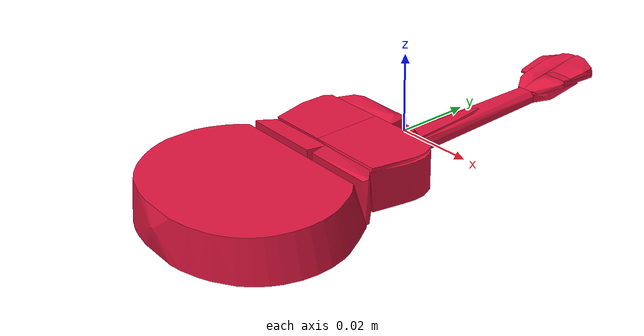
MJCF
<mujoco model="shapenet19-4">
  <asset>
    <mesh file="meshes/shapenet19-4/shapenet19-4_0.stl" name="shapenet19-4_0" scale="0.15 0.15 0.15"/>
    <mesh file="meshes/shapenet19-4/shapenet19-4_1.stl" name="shapenet19-4_1" scale="0.15 0.15 0.15"/>
    <mesh file="meshes/shapenet19-4/shapenet19-4_2.stl" name="shapenet19-4_2" scale="0.15 0.15 0.15"/>
    <mesh file="meshes/shapenet19-4/shapenet19-4_3.stl" name="shapenet19-4_3" scale="0.15 0.15 0.15"/>
    <mesh file="meshes/shapenet19-4/shapenet19-4_4.stl" name="shapenet19-4_4" scale="0.15 0.15 0.15"/>
    <mesh file="meshes/shapenet19-4/shapenet19-4_5.stl" name="shapenet19-4_5" scale="0.15 0.15 0.15"/>
    <mesh file="meshes/shapenet19-4/shapenet19-4_6.stl" name="shapenet19-4_6" scale="0.15 0.15 0.15"/>
    <mesh file="meshes/shapenet19-4/shapenet19-4_7.stl" name="shapenet19-4_7" scale="0.15 0.15 0.15"/>
    <mesh file="meshes/shapenet19-4/shapenet19-4_8.stl" name="shapenet19-4_8" scale="0.15 0.15 0.15"/>
    <mesh file="meshes/shapenet19-4/shapenet19-4_9.stl" name="shapenet19-4_9" scale="0.15 0.15 0.15"/>
    <mesh file="meshes/shapenet19-4/shapenet19-4_10.stl" name="shapenet19-4_10" scale="0.15 0.15 0.15"/>
    <mesh file="meshes/shapenet19-4/shapenet19-4_11.stl" name="shapenet19-4_11" scale="0.15 0.15 0.15"/>
    <mesh file="meshes/shapenet19-4/shapenet19-4_12.stl" name="shapenet19-4_12" scale="0.15 0.15 0.15"/>
    <mesh file="meshes/shapenet19-4/shapenet19-4_13.stl" name="shapenet19-4_13" scale="0.15 0.15 0.15"/>
    <mesh file="meshes/shapenet19-4/shapenet19-4_14.stl" name="shapenet19-4_14" scale="0.15 0.15 0.15"/>
    <mesh file="meshes/shapenet19-4/shapenet19-4_15.stl" name="shapenet19-4_15" scale="0.15 0.15 0.15"/>
    <mesh file="meshes/shapenet19-4/shapenet19-4_16.stl" name="shapenet19-4_16" scale="0.15 0.15 0.15"/>
    <mesh file="meshes/shapenet19-4/shapenet19-4_17.stl" name="shapenet19-4_17" scale="0.15 0.15 0.15"/>
    <mesh file="meshes/shapenet19-4/shapenet19-4_18.stl" name="shapenet19-4_18" scale="0.15 0.15 0.15"/>
    <mesh file="meshes/shapenet19-4/shapenet19-4_19.stl" name="shapenet19-4_19" scale="0.15 0.15 0.15"/>
  </asset>
  <worldbody>
    <body>
      <body name="collision">
        <geom pos="0 0 0" mesh="shapenet19-4_0" type="mesh" solimp="0.998 0.998 0.001" solref="0.001 1" density="100" friction="0.95 0.3 0.1" rgba="0.86 0.08 0.24 1" group="1" condim="4"/>
        <geom pos="0 0 0" mesh="shapenet19-4_1" type="mesh" solimp="0.998 0.998 0.001" solref="0.001 1" density="100" friction="0.95 0.3 0.1" rgba="0.86 0.08 0.24 1" group="1" condim="4"/>
        <geom pos="0 0 0" mesh="shapenet19-4_2" type="mesh" solimp="0.998 0.998 0.001" solref="0.001 1" density="100" friction="0.95 0.3 0.1" rgba="0.86 0.08 0.24 1" group="1" condim="4"/>
        <geom pos="0 0 0" mesh="shapenet19-4_3" type="mesh" solimp="0.998 0.998 0.001" solref="0.001 1" density="100" friction="0.95 0.3 0.1" rgba="0.86 0.08 0.24 1" group="1" condim="4"/>
        <geom pos="0 0 0" mesh="shapenet19-4_4" type="mesh" solimp="0.998 0.998 0.001" solref="0.001 1" density="100" friction="0.95 0.3 0.1" rgba="0.86 0.08 0.24 1" group="1" condim="4"/>
        <geom pos="0 0 0" mesh="shapenet19-4_5" type="mesh" solimp="0.998 0.998 0.001" solref="0.001 1" density="100" friction="0.95 0.3 0.1" rgba="0.86 0.08 0.24 1" group="1" condim="4"/>
        <geom pos="0 0 0" mesh="shapenet19-4_6" type="mesh" solimp="0.998 0.998 0.001" solref="0.001 1" density="100" friction="0.95 0.3 0.1" rgba="0.86 0.08 0.24 1" group="1" condim="4"/>
        <geom pos="0 0 0" mesh="shapenet19-4_7" type="mesh" solimp="0.998 0.998 0.001" solref="0.001 1" density="100" friction="0.95 0.3 0.1" rgba="0.86 0.08 0.24 1" group="1" condim="4"/>
        <geom pos="0 0 0" mesh="shapenet19-4_8" type="mesh" solimp="0.998 0.998 0.001" solref="0.001 1" density="100" friction="0.95 0.3 0.1" rgba="0.86 0.08 0.24 1" group="1" condim="4"/>
        <geom pos="0 0 0" mesh="shapenet19-4_9" type="mesh" solimp="0.998 0.998 0.001" solref="0.001 1" density="100" friction="0.95 0.3 0.1" rgba="0.86 0.08 0.24 1" group="1" condim="4"/>
        <geom pos="0 0 0" mesh="shapenet19-4_10" type="mesh" solimp="0.998 0.998 0.001" solref="0.001 1" density="100" friction="0.95 0.3 0.1" rgba="0.86 0.08 0.24 1" group="1" condim="4"/>
        <geom pos="0 0 0" mesh="shapenet19-4_11" type="mesh" solimp="0.998 0.998 0.001" solref="0.001 1" density="100" friction="0.95 0.3 0.1" rgba="0.86 0.08 0.24 1" group="1" condim="4"/>
        <geom pos="0 0 0" mesh="shapenet19-4_12" type="mesh" solimp="0.998 0.998 0.001" solref="0.001 1" density="100" friction="0.95 0.3 0.1" rgba="0.86 0.08 0.24 1" group="1" condim="4"/>
        <geom pos="0 0 0" mesh="shapenet19-4_13" type="mesh" solimp="0.998 0.998 0.001" solref="0.001 1" density="100" friction="0.95 0.3 0.1" rgba="0.86 0.08 0.24 1" group="1" condim="4"/>
        <geom pos="0 0 0" mesh="shapenet19-4_14" type="mesh" solimp="0.998 0.998 0.001" solref="0.001 1" density="100" friction="0.95 0.3 0.1" rgba="0.86 0.08 0.24 1" group="1" condim="4"/>
        <geom pos="0 0 0" mesh="shapenet19-4_15" type="mesh" solimp="0.998 0.998 0.001" solref="0.001 1" density="100" friction="0.95 0.3 0.1" rgba="0.86 0.08 0.24 1" group="1" condim="4"/>
        <geom pos="0 0 0" mesh="shapenet19-4_16" type="mesh" solimp="0.998 0.998 0.001" solref="0.001 1" density="100" friction="0.95 0.3 0.1" rgba="0.86 0.08 0.24 1" group="1" condim="4"/>
        <geom pos="0 0 0" mesh="shapenet19-4_17" type="mesh" solimp="0.998 0.998 0.001" solref="0.001 1" density="100" friction="0.95 0.3 0.1" rgba="0.86 0.08 0.24 1" group="1" condim="4"/>
        <geom pos="0 0 0" mesh="shapenet19-4_18" type="mesh" solimp="0.998 0.998 0.001" solref="0.001 1" density="100" friction="0.95 0.3 0.1" rgba="0.86 0.08 0.24 1" group="1" condim="4"/>
        <geom pos="0 0 0" mesh="shapenet19-4_19" type="mesh" solimp="0.998 0.998 0.001" solref="0.001 1" density="100" friction="0.95 0.3 0.1" rgba="0.86 0.08 0.24 1" group="1" condim="4"/>
      </body>
      <body name="visual">
        <geom pos="0 0 0" mesh="shapenet19-4_0" type="mesh" rgba="0 1 0 1" conaffinity="0" contype="0" group="0" mass="0.0001"/>
        <geom pos="0 0 0" mesh="shapenet19-4_1" type="mesh" rgba="0 1 0 1" conaffinity="0" contype="0" group="0" mass="0.0001"/>
        <geom pos="0 0 0" mesh="shapenet19-4_2" type="mesh" rgba="0 1 0 1" conaffinity="0" contype="0" group="0" mass="0.0001"/>
        <geom pos="0 0 0" mesh="shapenet19-4_3" type="mesh" rgba="0 1 0 1" conaffinity="0" contype="0" group="0" mass="0.0001"/>
        <geom pos="0 0 0" mesh="shapenet19-4_4" type="mesh" rgba="0 1 0 1" conaffinity="0" contype="0" group="0" mass="0.0001"/>
        <geom pos="0 0 0" mesh="shapenet19-4_5" type="mesh" rgba="0 1 0 1" conaffinity="0" contype="0" group="0" mass="0.0001"/>
        <geom pos="0 0 0" mesh="shapenet19-4_6" type="mesh" rgba="0 1 0 1" conaffinity="0" contype="0" group="0" mass="0.0001"/>
        <geom pos="0 0 0" mesh="shapenet19-4_7" type="mesh" rgba="0 1 0 1" conaffinity="0" contype="0" group="0" mass="0.0001"/>
        <geom pos="0 0 0" mesh="shapenet19-4_8" type="mesh" rgba="0 1 0 1" conaffinity="0" contype="0" group="0" mass="0.0001"/>
        <geom pos="0 0 0" mesh="shapenet19-4_9" type="mesh" rgba="0 1 0 1" conaffinity="0" contype="0" group="0" mass="0.0001"/>
        <geom pos="0 0 0" mesh="shapenet19-4_10" type="mesh" rgba="0 1 0 1" conaffinity="0" contype="0" group="0" mass="0.0001"/>
        <geom pos="0 0 0" mesh="shapenet19-4_11" type="mesh" rgba="0 1 0 1" conaffinity="0" contype="0" group="0" mass="0.0001"/>
        <geom pos="0 0 0" mesh="shapenet19-4_12" type="mesh" rgba="0 1 0 1" conaffinity="0" contype="0" group="0" mass="0.0001"/>
        <geom pos="0 0 0" mesh="shapenet19-4_13" type="mesh" rgba="0 1 0 1" conaffinity="0" contype="0" group="0" mass="0.0001"/>
        <geom pos="0 0 0" mesh="shapenet19-4_14" type="mesh" rgba="0 1 0 1" conaffinity="0" contype="0" group="0" mass="0.0001"/>
        <geom pos="0 0 0" mesh="shapenet19-4_15" type="mesh" rgba="0 1 0 1" conaffinity="0" contype="0" group="0" mass="0.0001"/>
        <geom pos="0 0 0" mesh="shapenet19-4_16" type="mesh" rgba="0 1 0 1" conaffinity="0" contype="0" group="0" mass="0.0001"/>
        <geom pos="0 0 0" mesh="shapenet19-4_17" type="mesh" rgba="0 1 0 1" conaffinity="0" contype="0" group="0" mass="0.0001"/>
        <geom pos="0 0 0" mesh="shapenet19-4_18" type="mesh" rgba="0 1 0 1" conaffinity="0" contype="0" group="0" mass="0.0001"/>
        <geom pos="0 0 0" mesh="shapenet19-4_19" type="mesh" rgba="0 1 0 1" conaffinity="0" contype="0" group="0" mass="0.0001"/>
      </body>
      <site rgba="0 0 0 0" size="0.005" pos="0 0 -0.06" name="bottom_site"/>
      <site rgba="0 0 0 0" size="0.005" pos="0 0 0.04" name="top_site"/>
      <site rgba="0 0 0 0" size="0.005" pos="0.025 0.025 0" name="horizontal_radius_site"/>
    </body>
  </worldbody>
</mujoco>
